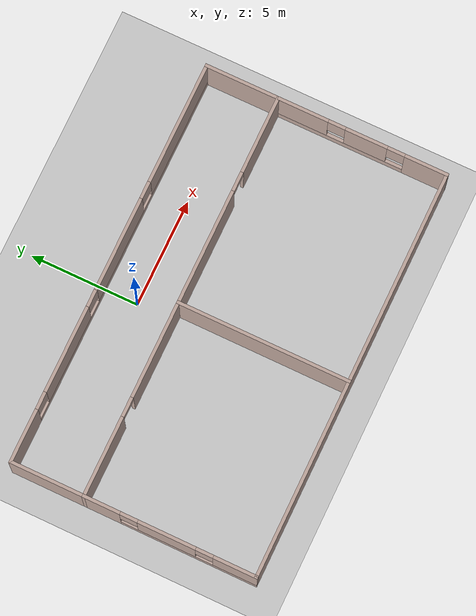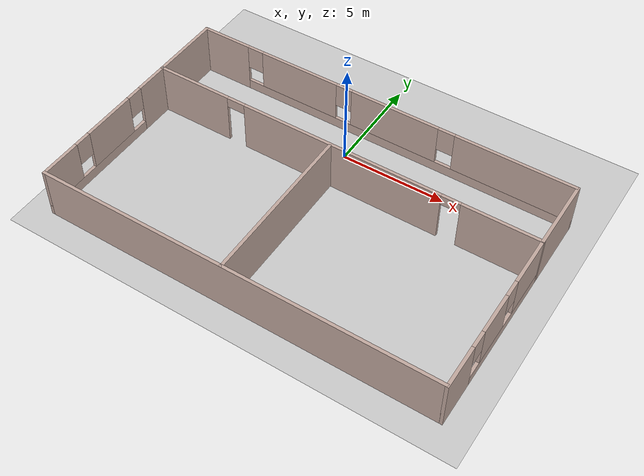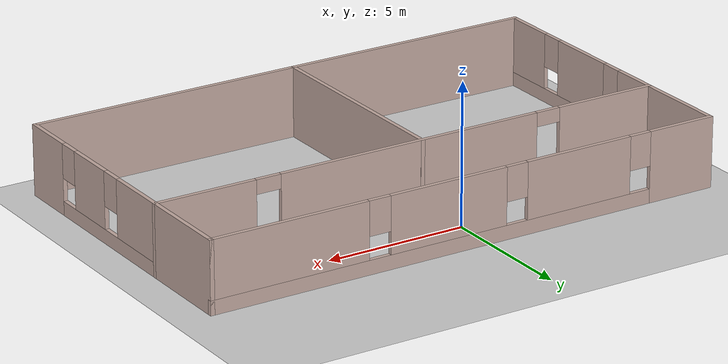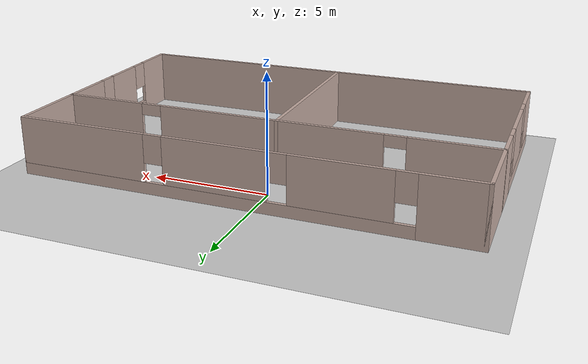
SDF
<sdf version="1.7">
 <world name="default">
  <light name="sun" type="directional">
   <pose>0 0 10 0 -0 0</pose>
   <diffuse>0.8 0.8 0.8 1</diffuse>
   <specular>0.2 0.2 0.2 1</specular>
   <attenuation>
    <range>1000</range>
    <constant>0.9</constant>
    <linear>0.01</linear>
    <quadratic>0.001</quadratic>
   </attenuation>
   <direction>-0.5 0.1 -0.9</direction>
   <spot><inner_angle>0</inner_angle><outer_angle>0</outer_angle><falloff>0</falloff></spot>
  </light>
  <model name="ground_plane">
   <static>1</static>
   <link name="link">
    <collision name="collision">
     <geometry><plane><normal>0 0 1</normal><size>100 100</size></plane></geometry>
     <surface><friction><ode><mu>100</mu><mu2>50</mu2></ode></friction></surface>
    </collision>
    <visual name="visual">
     <cast_shadows>0</cast_shadows>
     <geometry><plane><normal>0 0 1</normal><size>100 100</size></plane></geometry>
     <material>
      <script><uri>file://media/materials/scripts/gazebo.material</uri><name>Gazebo/Grey</name></script>
     </material>
    </visual>
   </link>
  </model>
  <gravity>0 0 -9.8</gravity>
  <magnetic_field>6e-06 2.3e-05 -4.2e-05</magnetic_field>
  <atmosphere type="adiabatic"/>
  <physics type="ode">
   <max_step_size>0.001</max_step_size>
   <real_time_factor>1</real_time_factor>
   <real_time_update_rate>1000</real_time_update_rate>
  </physics>
  <scene><ambient>0.4 0.4 0.4 1</ambient><background>0.7 0.7 0.7 1</background><shadows>1</shadows></scene>
  <spherical_coordinates>
   <surface_model>EARTH_WGS84</surface_model>
   <latitude_deg>0</latitude_deg>
   <longitude_deg>0</longitude_deg>
   <elevation>0</elevation>
   <heading_deg>0</heading_deg>
  </spherical_coordinates>
  <model name="emtry_room">
   <pose>0.745161 -4.04637 0 0 -0 0</pose>
   <link name="Wall_10">
    <pose>9.425 -1.675 0 0 -0 1.5708</pose>
    <visual name="Wall_10_Visual_0">
     <pose>-2.99004 0 1.25 0 -0 0</pose>
     <geometry><box><size>2.01992 0.15 2.5</size></box></geometry>
     <material>
      <script><uri>file://media/materials/scripts/gazebo.material</uri><name>Gazebo/Grey</name></script>
      <ambient>0.760784 0.662745 0.627451 1</ambient>
     </material>
     <meta><layer>0</layer></meta>
    </visual>
    <collision name="Wall_10_Collision_0">
     <geometry><box><size>2.01992 0.15 2.5</size></box></geometry>
     <pose>-2.99004 0 1.25 0 -0 0</pose>
    </collision>
    <visual name="Wall_10_Visual_1">
     <pose>1.00996 0 0.25 0 -0 0</pose>
     <geometry><box><size>5.98008 0.15 0.5</size></box></geometry>
     <material>
      <script><uri>file://media/materials/scripts/gazebo.material</uri><name>Gazebo/Grey</name></script>
      <ambient>0.760784 0.662745 0.627451 1</ambient>
     </material>
     <meta><layer>0</layer></meta>
    </visual>
    <collision name="Wall_10_Collision_1">
     <geometry><box><size>5.98008 0.15 0.5</size></box></geometry>
     <pose>1.00996 0 0.25 0 -0 0</pose>
    </collision>
    <visual name="Wall_10_Visual_2">
     <pose>-0.203813 0 1.5 0 -0 0</pose>
     <geometry><box><size>1.95254 0.15 2</size></box></geometry>
     <material>
      <script><uri>file://media/materials/scripts/gazebo.material</uri><name>Gazebo/Grey</name></script>
      <ambient>0.760784 0.662745 0.627451 1</ambient>
     </material>
     <meta><layer>0</layer></meta>
    </visual>
    <collision name="Wall_10_Collision_2">
     <geometry><box><size>1.95254 0.15 2</size></box></geometry>
     <pose>-0.203813 0 1.5 0 -0 0</pose>
    </collision>
    <visual name="Wall_10_Visual_3">
     <pose>2.78623 0 1.5 0 -0 0</pose>
     <geometry><box><size>2.42754 0.15 2</size></box></geometry>
     <material>
      <script><uri>file://media/materials/scripts/gazebo.material</uri><name>Gazebo/Grey</name></script>
      <ambient>0.760784 0.662745 0.627451 1</ambient>
     </material>
     <meta><layer>0</layer></meta>
    </visual>
    <collision name="Wall_10_Collision_3">
     <geometry><box><size>2.42754 0.15 2</size></box></geometry>
     <pose>2.78623 0 1.5 0 -0 0</pose>
    </collision>
    <visual name="Wall_10_Visual_4">
     <pose>-1.58008 0 1.9 0 -0 0</pose>
     <geometry><box><size>0.8 0.15 1.2</size></box></geometry>
     <material>
      <script><uri>file://media/materials/scripts/gazebo.material</uri><name>Gazebo/Grey</name></script>
      <ambient>0.760784 0.662745 0.627451 1</ambient>
     </material>
     <meta><layer>0</layer></meta>
    </visual>
    <collision name="Wall_10_Collision_4">
     <geometry><box><size>0.8 0.15 1.2</size></box></geometry>
     <pose>-1.58008 0 1.9 0 -0 0</pose>
    </collision>
    <visual name="Wall_10_Visual_5">
     <pose>1.17246 0 1.9 0 -0 0</pose>
     <geometry><box><size>0.8 0.15 1.2</size></box></geometry>
     <material>
      <script><uri>file://media/materials/scripts/gazebo.material</uri><name>Gazebo/Grey</name></script>
      <ambient>0.760784 0.662745 0.627451 1</ambient>
     </material>
     <meta><layer>0</layer></meta>
    </visual>
    <collision name="Wall_10_Collision_5">
     <geometry><box><size>0.8 0.15 1.2</size></box></geometry>
     <pose>1.17246 0 1.9 0 -0 0</pose>
    </collision>
   </link>
   <link name="Wall_11">
    <pose>0 2.25 0 0 -0 3.14159</pose>
    <visual name="Wall_11_Visual_0">
     <pose>-7.6643 0 1.25 0 -0 0</pose>
     <geometry><box><size>3.67141 0.15 2.5</size></box></geometry>
     <material>
      <script><uri>file://media/materials/scripts/gazebo.material</uri><name>Gazebo/Grey</name></script>
      <ambient>0.760784 0.662745 0.627451 1</ambient>
     </material>
     <meta><layer>0</layer></meta>
    </visual>
    <collision name="Wall_11_Collision_0">
     <geometry><box><size>3.67141 0.15 2.5</size></box></geometry>
     <pose>-7.6643 0 1.25 0 -0 0</pose>
    </collision>
    <visual name="Wall_11_Visual_1">
     <pose>-0.035419 0 1.25 0 -0 0</pose>
     <geometry><box><size>9.78634 0.15 2.5</size></box></geometry>
     <material>
      <script><uri>file://media/materials/scripts/gazebo.material</uri><name>Gazebo/Grey</name></script>
      <ambient>0.760784 0.662745 0.627451 1</ambient>
     </material>
     <meta><layer>0</layer></meta>
    </visual>
    <collision name="Wall_11_Collision_1">
     <geometry><box><size>9.78634 0.15 2.5</size></box></geometry>
     <pose>-0.035419 0 1.25 0 -0 0</pose>
    </collision>
    <visual name="Wall_11_Visual_2">
     <pose>7.62888 0 1.25 0 -0 0</pose>
     <geometry><box><size>3.74225 0.15 2.5</size></box></geometry>
     <material>
      <script><uri>file://media/materials/scripts/gazebo.material</uri><name>Gazebo/Grey</name></script>
      <ambient>0.760784 0.662745 0.627451 1</ambient>
     </material>
     <meta><layer>0</layer></meta>
    </visual>
    <collision name="Wall_11_Collision_2">
     <geometry><box><size>3.74225 0.15 2.5</size></box></geometry>
     <pose>7.62888 0 1.25 0 -0 0</pose>
    </collision>
    <visual name="Wall_11_Visual_3">
     <pose>-5.37859 0 2.25 0 -0 0</pose>
     <geometry><box><size>0.9 0.15 0.5</size></box></geometry>
     <material>
      <script><uri>file://media/materials/scripts/gazebo.material</uri><name>Gazebo/Grey</name></script>
      <ambient>0.760784 0.662745 0.627451 1</ambient>
     </material>
     <meta><layer>0</layer></meta>
    </visual>
    <collision name="Wall_11_Collision_3">
     <geometry><box><size>0.9 0.15 0.5</size></box></geometry>
     <pose>-5.37859 0 2.25 0 -0 0</pose>
    </collision>
    <visual name="Wall_11_Visual_4">
     <pose>5.30775 0 2.25 0 -0 0</pose>
     <geometry><box><size>0.9 0.15 0.5</size></box></geometry>
     <material>
      <script><uri>file://media/materials/scripts/gazebo.material</uri><name>Gazebo/Grey</name></script>
      <ambient>0.760784 0.662745 0.627451 1</ambient>
     </material>
     <meta><layer>0</layer></meta>
    </visual>
    <collision name="Wall_11_Collision_4">
     <geometry><box><size>0.9 0.15 0.5</size></box></geometry>
     <pose>5.30775 0 2.25 0 -0 0</pose>
    </collision>
   </link>
   <link name="Wall_12">
    <collision name="Wall_12_Collision">
     <geometry><box><size>0.15 0.15 2.5</size></box></geometry>
     <pose>0 0 1.25 0 -0 0</pose>
    </collision>
    <visual name="Wall_12_Visual">
     <pose>0 0 1.25 0 -0 0</pose>
     <geometry><box><size>0.15 0.15 2.5</size></box></geometry>
     <material>
      <script><uri>file://media/materials/scripts/gazebo.material</uri><name>Gazebo/Grey</name></script>
      <ambient>1 1 1 1</ambient>
     </material>
     <meta><layer>0</layer></meta>
    </visual>
    <pose>-9.425 2.25 0 0 -0 0</pose>
   </link>
   <link name="Wall_14">
    <collision name="Wall_14_Collision">
     <geometry><box><size>8 0.15 2.5</size></box></geometry>
     <pose>0 0 1.25 0 -0 0</pose>
    </collision>
    <visual name="Wall_14_Visual">
     <pose>0 0 1.25 0 -0 0</pose>
     <geometry><box><size>8 0.15 2.5</size></box></geometry>
     <material>
      <script><uri>file://media/materials/scripts/gazebo.material</uri><name>Gazebo/Grey</name></script>
      <ambient>0.760784 0.662745 0.627451 1</ambient>
     </material>
     <meta><layer>0</layer></meta>
    </visual>
    <pose>-0.392584 -1.67222 0 0 -0 -1.5708</pose>
   </link>
   <link name="Wall_16">
    <collision name="Wall_16_Collision">
     <geometry><box><size>3.5 0.15 2.5</size></box></geometry>
     <pose>0 0 1.25 0 -0 0</pose>
    </collision>
    <visual name="Wall_16_Visual">
     <pose>0 0 1.25 0 -0 0</pose>
     <geometry><box><size>3.5 0.15 2.5</size></box></geometry>
     <material>
      <script><uri>file://media/materials/scripts/gazebo.material</uri><name>Gazebo/Grey</name></script>
      <ambient>0.760784 0.662745 0.627451 1</ambient>
     </material>
     <meta><layer>0</layer></meta>
    </visual>
    <pose>-9.425 3.925 0 0 -0 1.5708</pose>
   </link>
   <link name="Wall_17">
    <pose>0 5.6 0 0 -0 0</pose>
    <visual name="Wall_17_Visual_0">
     <pose>-8.24468 0 1.25 0 -0 0</pose>
     <geometry><box><size>2.51064 0.15 2.5</size></box></geometry>
     <material>
      <script><uri>file://media/materials/scripts/gazebo.material</uri><name>Gazebo/Grey</name></script>
      <ambient>0.760784 0.662745 0.627451 1</ambient>
     </material>
     <meta><layer>0</layer></meta>
    </visual>
    <collision name="Wall_17_Collision_0">
     <geometry><box><size>2.51064 0.15 2.5</size></box></geometry>
     <pose>-8.24468 0 1.25 0 -0 0</pose>
    </collision>
    <visual name="Wall_17_Visual_1">
     <pose>1.25532 0 0.25 0 -0 0</pose>
     <geometry><box><size>16.4894 0.15 0.5</size></box></geometry>
     <material>
      <script><uri>file://media/materials/scripts/gazebo.material</uri><name>Gazebo/Grey</name></script>
      <ambient>0.760784 0.662745 0.627451 1</ambient>
     </material>
     <meta><layer>0</layer></meta>
    </visual>
    <collision name="Wall_17_Collision_1">
     <geometry><box><size>16.4894 0.15 0.5</size></box></geometry>
     <pose>1.25532 0 0.25 0 -0 0</pose>
    </collision>
    <visual name="Wall_17_Visual_2">
     <pose>-4.18241 0 1.5 0 -0 0</pose>
     <geometry><box><size>4.0139 0.15 2</size></box></geometry>
     <material>
      <script><uri>file://media/materials/scripts/gazebo.material</uri><name>Gazebo/Grey</name></script>
      <ambient>0.760784 0.662745 0.627451 1</ambient>
     </material>
     <meta><layer>0</layer></meta>
    </visual>
    <collision name="Wall_17_Collision_2">
     <geometry><box><size>4.0139 0.15 2</size></box></geometry>
     <pose>-4.18241 0 1.5 0 -0 0</pose>
    </collision>
    <visual name="Wall_17_Visual_3">
     <pose>0.803414 0 1.5 0 -0 0</pose>
     <geometry><box><size>4.35775 0.15 2</size></box></geometry>
     <material>
      <script><uri>file://media/materials/scripts/gazebo.material</uri><name>Gazebo/Grey</name></script>
      <ambient>0.760784 0.662745 0.627451 1</ambient>
     </material>
     <meta><layer>0</layer></meta>
    </visual>
    <collision name="Wall_17_Collision_3">
     <geometry><box><size>4.35775 0.15 2</size></box></geometry>
     <pose>0.803414 0 1.5 0 -0 0</pose>
    </collision>
    <visual name="Wall_17_Visual_4">
     <pose>6.64114 0 1.5 0 -0 0</pose>
     <geometry><box><size>5.71771 0.15 2</size></box></geometry>
     <material>
      <script><uri>file://media/materials/scripts/gazebo.material</uri><name>Gazebo/Grey</name></script>
      <ambient>0.760784 0.662745 0.627451 1</ambient>
     </material>
     <meta><layer>0</layer></meta>
    </visual>
    <collision name="Wall_17_Collision_4">
     <geometry><box><size>5.71771 0.15 2</size></box></geometry>
     <pose>6.64114 0 1.5 0 -0 0</pose>
    </collision>
    <visual name="Wall_17_Visual_5">
     <pose>-6.58936 0 1.9 0 -0 0</pose>
     <geometry><box><size>0.8 0.15 1.2</size></box></geometry>
     <material>
      <script><uri>file://media/materials/scripts/gazebo.material</uri><name>Gazebo/Grey</name></script>
      <ambient>0.760784 0.662745 0.627451 1</ambient>
     </material>
     <meta><layer>0</layer></meta>
    </visual>
    <collision name="Wall_17_Collision_5">
     <geometry><box><size>0.8 0.15 1.2</size></box></geometry>
     <pose>-6.58936 0 1.9 0 -0 0</pose>
    </collision>
    <visual name="Wall_17_Visual_6">
     <pose>-1.77546 0 1.9 0 -0 0</pose>
     <geometry><box><size>0.8 0.15 1.2</size></box></geometry>
     <material>
      <script><uri>file://media/materials/scripts/gazebo.material</uri><name>Gazebo/Grey</name></script>
      <ambient>0.760784 0.662745 0.627451 1</ambient>
     </material>
     <meta><layer>0</layer></meta>
    </visual>
    <collision name="Wall_17_Collision_6">
     <geometry><box><size>0.8 0.15 1.2</size></box></geometry>
     <pose>-1.77546 0 1.9 0 -0 0</pose>
    </collision>
    <visual name="Wall_17_Visual_7">
     <pose>3.38229 0 1.9 0 -0 0</pose>
     <geometry><box><size>0.8 0.15 1.2</size></box></geometry>
     <material>
      <script><uri>file://media/materials/scripts/gazebo.material</uri><name>Gazebo/Grey</name></script>
      <ambient>0.760784 0.662745 0.627451 1</ambient>
     </material>
     <meta><layer>0</layer></meta>
    </visual>
    <collision name="Wall_17_Collision_7">
     <geometry><box><size>0.8 0.15 1.2</size></box></geometry>
     <pose>3.38229 0 1.9 0 -0 0</pose>
    </collision>
   </link>
   <link name="Wall_18">
    <collision name="Wall_18_Collision">
     <geometry><box><size>3.5 0.15 2.5</size></box></geometry>
     <pose>0 0 1.25 0 -0 0</pose>
    </collision>
    <visual name="Wall_18_Visual">
     <pose>0 0 1.25 0 -0 0</pose>
     <geometry><box><size>3.5 0.15 2.5</size></box></geometry>
     <material>
      <script><uri>file://media/materials/scripts/gazebo.material</uri><name>Gazebo/Grey</name></script>
      <ambient>0.760784 0.662745 0.627451 1</ambient>
     </material>
     <meta><layer>0</layer></meta>
    </visual>
    <pose>9.425 3.925 0 0 -0 -1.5708</pose>
   </link>
   <link name="Wall_8">
    <pose>-9.425 -1.675 0 0 -0 -1.5708</pose>
    <visual name="Wall_8_Visual_0">
     <pose>-3.13319 0 1.25 0 -0 0</pose>
     <geometry><box><size>1.73362 0.15 2.5</size></box></geometry>
     <material>
      <script><uri>file://media/materials/scripts/gazebo.material</uri><name>Gazebo/Grey</name></script>
      <ambient>0.760784 0.662745 0.627451 1</ambient>
     </material>
     <meta><layer>0</layer></meta>
    </visual>
    <collision name="Wall_8_Collision_0">
     <geometry><box><size>1.73362 0.15 2.5</size></box></geometry>
     <pose>-3.13319 0 1.25 0 -0 0</pose>
    </collision>
    <visual name="Wall_8_Visual_1">
     <pose>0.866812 0 0.25 0 -0 0</pose>
     <geometry><box><size>6.26638 0.15 0.5</size></box></geometry>
     <material>
      <script><uri>file://media/materials/scripts/gazebo.material</uri><name>Gazebo/Grey</name></script>
      <ambient>0.760784 0.662745 0.627451 1</ambient>
     </material>
     <meta><layer>0</layer></meta>
    </visual>
    <collision name="Wall_8_Collision_1">
     <geometry><box><size>6.26638 0.15 0.5</size></box></geometry>
     <pose>0.866812 0 0.25 0 -0 0</pose>
    </collision>
    <visual name="Wall_8_Visual_2">
     <pose>-0.143146 0 1.5 0 -0 0</pose>
     <geometry><box><size>2.64646 0.15 2</size></box></geometry>
     <material>
      <script><uri>file://media/materials/scripts/gazebo.material</uri><name>Gazebo/Grey</name></script>
      <ambient>0.760784 0.662745 0.627451 1</ambient>
     </material>
     <meta><layer>0</layer></meta>
    </visual>
    <collision name="Wall_8_Collision_2">
     <geometry><box><size>2.64646 0.15 2</size></box></geometry>
     <pose>-0.143146 0 1.5 0 -0 0</pose>
    </collision>
    <visual name="Wall_8_Visual_3">
     <pose>2.99004 0 1.5 0 -0 0</pose>
     <geometry><box><size>2.01992 0.15 2</size></box></geometry>
     <material>
      <script><uri>file://media/materials/scripts/gazebo.material</uri><name>Gazebo/Grey</name></script>
      <ambient>0.760784 0.662745 0.627451 1</ambient>
     </material>
     <meta><layer>0</layer></meta>
    </visual>
    <collision name="Wall_8_Collision_3">
     <geometry><box><size>2.01992 0.15 2</size></box></geometry>
     <pose>2.99004 0 1.5 0 -0 0</pose>
    </collision>
    <visual name="Wall_8_Visual_4">
     <pose>-1.86638 0 1.9 0 -0 0</pose>
     <geometry><box><size>0.8 0.15 1.2</size></box></geometry>
     <material>
      <script><uri>file://media/materials/scripts/gazebo.material</uri><name>Gazebo/Grey</name></script>
      <ambient>0.760784 0.662745 0.627451 1</ambient>
     </material>
     <meta><layer>0</layer></meta>
    </visual>
    <collision name="Wall_8_Collision_4">
     <geometry><box><size>0.8 0.15 1.2</size></box></geometry>
     <pose>-1.86638 0 1.9 0 -0 0</pose>
    </collision>
    <visual name="Wall_8_Visual_5">
     <pose>1.58008 0 1.9 0 -0 0</pose>
     <geometry><box><size>0.8 0.15 1.2</size></box></geometry>
     <material>
      <script><uri>file://media/materials/scripts/gazebo.material</uri><name>Gazebo/Grey</name></script>
      <ambient>0.760784 0.662745 0.627451 1</ambient>
     </material>
     <meta><layer>0</layer></meta>
    </visual>
    <collision name="Wall_8_Collision_5">
     <geometry><box><size>0.8 0.15 1.2</size></box></geometry>
     <pose>1.58008 0 1.9 0 -0 0</pose>
    </collision>
   </link>
   <link name="Wall_9">
    <collision name="Wall_9_Collision">
     <geometry><box><size>19 0.15 2.5</size></box></geometry>
     <pose>0 0 1.25 0 -0 0</pose>
    </collision>
    <visual name="Wall_9_Visual">
     <pose>0 0 1.25 0 -0 0</pose>
     <geometry><box><size>19 0.15 2.5</size></box></geometry>
     <material>
      <script><uri>file://media/materials/scripts/gazebo.material</uri><name>Gazebo/Grey</name></script>
      <ambient>0.760784 0.662745 0.627451 1</ambient>
     </material>
     <meta><layer>0</layer></meta>
    </visual>
    <pose>0 -5.6 0 0 -0 0</pose>
   </link>
   <static>1</static>
  </model>
 </world>
</sdf>
